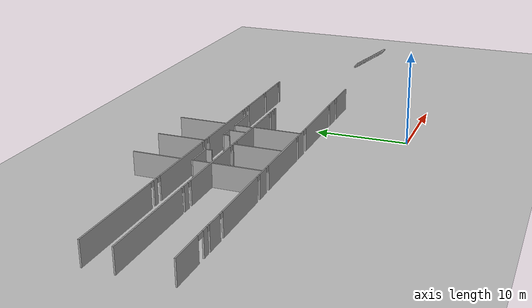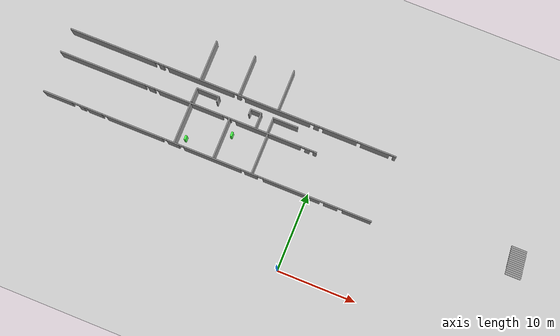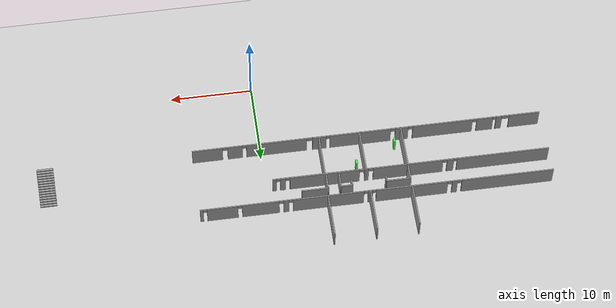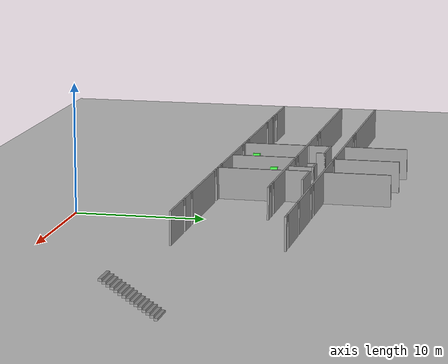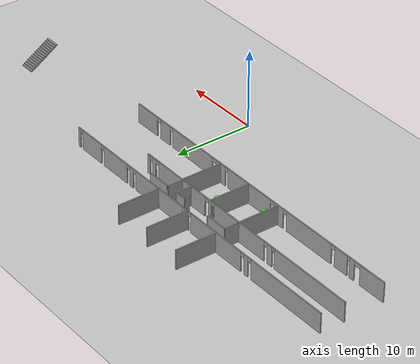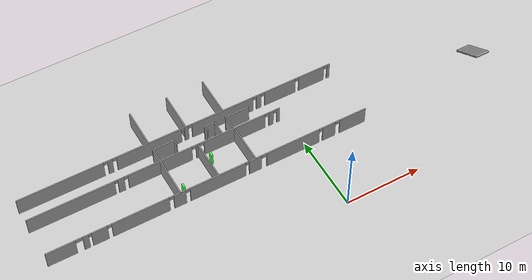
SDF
<sdf version="1.6">
 <world name="default">
  <model name="ground_plane">
   <static>1</static>
   <link name="link">
    <collision name="collision">
     <geometry><plane><normal>0 0 1</normal><size>100 100</size></plane></geometry>
     <surface><friction><ode><mu>100</mu><mu2>50</mu2></ode></friction></surface>
    </collision>
    <visual name="visual">
     <cast_shadows>0</cast_shadows>
     <geometry><plane><normal>0 0 1</normal><size>100 100</size></plane></geometry>
     <material>
      <script><uri>file://media/materials/scripts/gazebo.material</uri><name>Gazebo/Grey</name></script>
     </material>
    </visual>
   </link>
  </model>
  <model name="se1floor1">
   <pose>-5.19256 -0.852459 0 0 -0 0</pose>
   <link name="Stairs_0">
    <visual name="Stairs_0_Visual_0">
     <pose>31.172 14.058 0.083333 0 -0 0</pose>
     <geometry><box><size>1.96304 0.254734 0.166667</size></box></geometry>
     <material>
      <script><uri>file://media/materials/scripts/gazebo.material</uri><name>Gazebo/Grey</name></script>
      <ambient>1 1 1 1</ambient>
     </material>
     <meta><layer>0</layer></meta>
    </visual>
    <collision name="Stairs_0_Collision_0">
     <geometry><box><size>1.96304 0.254734 0.166667</size></box></geometry>
     <pose>31.172 14.058 0.083333 0 -0 0</pose>
    </collision>
    <visual name="Stairs_0_Visual_1">
     <pose>31.172 13.8033 0.25 0 -0 0</pose>
     <geometry><box><size>1.96304 0.254734 0.166667</size></box></geometry>
     <material>
      <script><uri>file://media/materials/scripts/gazebo.material</uri><name>Gazebo/Grey</name></script>
      <ambient>1 1 1 1</ambient>
     </material>
     <meta><layer>0</layer></meta>
    </visual>
    <collision name="Stairs_0_Collision_1">
     <geometry><box><size>1.96304 0.254734 0.166667</size></box></geometry>
     <pose>31.172 13.8033 0.25 0 -0 0</pose>
    </collision>
    <visual name="Stairs_0_Visual_2">
     <pose>31.172 13.5485 0.416667 0 -0 0</pose>
     <geometry><box><size>1.96304 0.254734 0.166667</size></box></geometry>
     <material>
      <script><uri>file://media/materials/scripts/gazebo.material</uri><name>Gazebo/Grey</name></script>
      <ambient>1 1 1 1</ambient>
     </material>
     <meta><layer>0</layer></meta>
    </visual>
    <collision name="Stairs_0_Collision_2">
     <geometry><box><size>1.96304 0.254734 0.166667</size></box></geometry>
     <pose>31.172 13.5485 0.416667 0 -0 0</pose>
    </collision>
    <visual name="Stairs_0_Visual_3">
     <pose>31.172 13.2938 0.583333 0 -0 0</pose>
     <geometry><box><size>1.96304 0.254734 0.166667</size></box></geometry>
     <material>
      <script><uri>file://media/materials/scripts/gazebo.material</uri><name>Gazebo/Grey</name></script>
      <ambient>1 1 1 1</ambient>
     </material>
     <meta><layer>0</layer></meta>
    </visual>
    <collision name="Stairs_0_Collision_3">
     <geometry><box><size>1.96304 0.254734 0.166667</size></box></geometry>
     <pose>31.172 13.2938 0.583333 0 -0 0</pose>
    </collision>
    <visual name="Stairs_0_Visual_4">
     <pose>31.172 13.0391 0.75 0 -0 0</pose>
     <geometry><box><size>1.96304 0.254734 0.166667</size></box></geometry>
     <material>
      <script><uri>file://media/materials/scripts/gazebo.material</uri><name>Gazebo/Grey</name></script>
      <ambient>1 1 1 1</ambient>
     </material>
     <meta><layer>0</layer></meta>
    </visual>
    <collision name="Stairs_0_Collision_4">
     <geometry><box><size>1.96304 0.254734 0.166667</size></box></geometry>
     <pose>31.172 13.0391 0.75 0 -0 0</pose>
    </collision>
    <visual name="Stairs_0_Visual_5">
     <pose>31.172 12.7843 0.916667 0 -0 0</pose>
     <geometry><box><size>1.96304 0.254734 0.166667</size></box></geometry>
     <material>
      <script><uri>file://media/materials/scripts/gazebo.material</uri><name>Gazebo/Grey</name></script>
      <ambient>1 1 1 1</ambient>
     </material>
     <meta><layer>0</layer></meta>
    </visual>
    <collision name="Stairs_0_Collision_5">
     <geometry><box><size>1.96304 0.254734 0.166667</size></box></geometry>
     <pose>31.172 12.7843 0.916667 0 -0 0</pose>
    </collision>
    <visual name="Stairs_0_Visual_6">
     <pose>31.172 12.5296 1.08333 0 -0 0</pose>
     <geometry><box><size>1.96304 0.254734 0.166667</size></box></geometry>
     <material>
      <script><uri>file://media/materials/scripts/gazebo.material</uri><name>Gazebo/Grey</name></script>
      <ambient>1 1 1 1</ambient>
     </material>
     <meta><layer>0</layer></meta>
    </visual>
    <collision name="Stairs_0_Collision_6">
     <geometry><box><size>1.96304 0.254734 0.166667</size></box></geometry>
     <pose>31.172 12.5296 1.08333 0 -0 0</pose>
    </collision>
    <visual name="Stairs_0_Visual_7">
     <pose>31.172 12.2749 1.25 0 -0 0</pose>
     <geometry><box><size>1.96304 0.254734 0.166667</size></box></geometry>
     <material>
      <script><uri>file://media/materials/scripts/gazebo.material</uri><name>Gazebo/Grey</name></script>
      <ambient>1 1 1 1</ambient>
     </material>
     <meta><layer>0</layer></meta>
    </visual>
    <collision name="Stairs_0_Collision_7">
     <geometry><box><size>1.96304 0.254734 0.166667</size></box></geometry>
     <pose>31.172 12.2749 1.25 0 -0 0</pose>
    </collision>
    <visual name="Stairs_0_Visual_8">
     <pose>31.172 12.0201 1.41667 0 -0 0</pose>
     <geometry><box><size>1.96304 0.254734 0.166667</size></box></geometry>
     <material>
      <script><uri>file://media/materials/scripts/gazebo.material</uri><name>Gazebo/Grey</name></script>
      <ambient>1 1 1 1</ambient>
     </material>
     <meta><layer>0</layer></meta>
    </visual>
    <collision name="Stairs_0_Collision_8">
     <geometry><box><size>1.96304 0.254734 0.166667</size></box></geometry>
     <pose>31.172 12.0201 1.41667 0 -0 0</pose>
    </collision>
    <visual name="Stairs_0_Visual_9">
     <pose>31.172 11.7654 1.58333 0 -0 0</pose>
     <geometry><box><size>1.96304 0.254734 0.166667</size></box></geometry>
     <material>
      <script><uri>file://media/materials/scripts/gazebo.material</uri><name>Gazebo/Grey</name></script>
      <ambient>1 1 1 1</ambient>
     </material>
     <meta><layer>0</layer></meta>
    </visual>
    <collision name="Stairs_0_Collision_9">
     <geometry><box><size>1.96304 0.254734 0.166667</size></box></geometry>
     <pose>31.172 11.7654 1.58333 0 -0 0</pose>
    </collision>
    <visual name="Stairs_0_Visual_10">
     <pose>31.172 11.5107 1.75 0 -0 0</pose>
     <geometry><box><size>1.96304 0.254734 0.166667</size></box></geometry>
     <material>
      <script><uri>file://media/materials/scripts/gazebo.material</uri><name>Gazebo/Grey</name></script>
      <ambient>1 1 1 1</ambient>
     </material>
     <meta><layer>0</layer></meta>
    </visual>
    <collision name="Stairs_0_Collision_10">
     <geometry><box><size>1.96304 0.254734 0.166667</size></box></geometry>
     <pose>31.172 11.5107 1.75 0 -0 0</pose>
    </collision>
    <visual name="Stairs_0_Visual_11">
     <pose>31.172 11.2559 1.91667 0 -0 0</pose>
     <geometry><box><size>1.96304 0.254734 0.166667</size></box></geometry>
     <material>
      <script><uri>file://media/materials/scripts/gazebo.material</uri><name>Gazebo/Grey</name></script>
      <ambient>1 1 1 1</ambient>
     </material>
     <meta><layer>0</layer></meta>
    </visual>
    <collision name="Stairs_0_Collision_11">
     <geometry><box><size>1.96304 0.254734 0.166667</size></box></geometry>
     <pose>31.172 11.2559 1.91667 0 -0 0</pose>
    </collision>
    <visual name="Stairs_0_Visual_12">
     <pose>31.172 11.0012 2.08333 0 -0 0</pose>
     <geometry><box><size>1.96304 0.254734 0.166667</size></box></geometry>
     <material>
      <script><uri>file://media/materials/scripts/gazebo.material</uri><name>Gazebo/Grey</name></script>
      <ambient>1 1 1 1</ambient>
     </material>
     <meta><layer>0</layer></meta>
    </visual>
    <collision name="Stairs_0_Collision_12">
     <geometry><box><size>1.96304 0.254734 0.166667</size></box></geometry>
     <pose>31.172 11.0012 2.08333 0 -0 0</pose>
    </collision>
    <visual name="Stairs_0_Visual_13">
     <pose>31.172 10.7465 2.25 0 -0 0</pose>
     <geometry><box><size>1.96304 0.254734 0.166667</size></box></geometry>
     <material>
      <script><uri>file://media/materials/scripts/gazebo.material</uri><name>Gazebo/Grey</name></script>
      <ambient>1 1 1 1</ambient>
     </material>
     <meta><layer>0</layer></meta>
    </visual>
    <collision name="Stairs_0_Collision_13">
     <geometry><box><size>1.96304 0.254734 0.166667</size></box></geometry>
     <pose>31.172 10.7465 2.25 0 -0 0</pose>
    </collision>
    <visual name="Stairs_0_Visual_14">
     <pose>31.172 10.4917 2.41667 0 -0 0</pose>
     <geometry><box><size>1.96304 0.254734 0.166667</size></box></geometry>
     <material>
      <script><uri>file://media/materials/scripts/gazebo.material</uri><name>Gazebo/Grey</name></script>
      <ambient>1 1 1 1</ambient>
     </material>
     <meta><layer>0</layer></meta>
    </visual>
    <collision name="Stairs_0_Collision_14">
     <geometry><box><size>1.96304 0.254734 0.166667</size></box></geometry>
     <pose>31.172 10.4917 2.41667 0 -0 0</pose>
    </collision>
   </link>
   <link name="Wall_20">
    <pose>-7.78282 10.2953 0 0 -0 0</pose>
    <visual name="Wall_20_Visual_0">
     <pose>-19.3949 0 1.25 0 -0 0</pose>
     <geometry><box><size>3.71017 0.15 2.5</size></box></geometry>
     <material>
      <script><uri>file://media/materials/scripts/gazebo.material</uri><name>Gazebo/Grey</name></script>
      <ambient>1 1 1 1</ambient>
     </material>
     <meta><layer>0</layer></meta>
    </visual>
    <collision name="Wall_20_Collision_0">
     <geometry><box><size>3.71017 0.15 2.5</size></box></geometry>
     <pose>-19.3949 0 1.25 0 -0 0</pose>
    </collision>
    <visual name="Wall_20_Visual_1">
     <pose>-16.2807 0 1.25 0 -0 0</pose>
     <geometry><box><size>0.718224 0.15 2.5</size></box></geometry>
     <material>
      <script><uri>file://media/materials/scripts/gazebo.material</uri><name>Gazebo/Grey</name></script>
      <ambient>1 1 1 1</ambient>
     </material>
     <meta><layer>0</layer></meta>
    </visual>
    <collision name="Wall_20_Collision_1">
     <geometry><box><size>0.718224 0.15 2.5</size></box></geometry>
     <pose>-16.2807 0 1.25 0 -0 0</pose>
    </collision>
    <visual name="Wall_20_Visual_2">
     <pose>-14.5512 0 1.25 0 -0 0</pose>
     <geometry><box><size>1.99257 0.15 2.5</size></box></geometry>
     <material>
      <script><uri>file://media/materials/scripts/gazebo.material</uri><name>Gazebo/Grey</name></script>
      <ambient>1 1 1 1</ambient>
     </material>
     <meta><layer>0</layer></meta>
    </visual>
    <collision name="Wall_20_Collision_2">
     <geometry><box><size>1.99257 0.15 2.5</size></box></geometry>
     <pose>-14.5512 0 1.25 0 -0 0</pose>
    </collision>
    <visual name="Wall_20_Visual_3">
     <pose>-9.34259 0 1.25 0 -0 0</pose>
     <geometry><box><size>7.35294 0.15 2.5</size></box></geometry>
     <material>
      <script><uri>file://media/materials/scripts/gazebo.material</uri><name>Gazebo/Grey</name></script>
      <ambient>1 1 1 1</ambient>
     </material>
     <meta><layer>0</layer></meta>
    </visual>
    <collision name="Wall_20_Collision_3">
     <geometry><box><size>7.35294 0.15 2.5</size></box></geometry>
     <pose>-9.34259 0 1.25 0 -0 0</pose>
    </collision>
    <visual name="Wall_20_Visual_4">
     <pose>-4.29765 0 1.25 0 -0 0</pose>
     <geometry><box><size>1.58424 0.15 2.5</size></box></geometry>
     <material>
      <script><uri>file://media/materials/scripts/gazebo.material</uri><name>Gazebo/Grey</name></script>
      <ambient>1 1 1 1</ambient>
     </material>
     <meta><layer>0</layer></meta>
    </visual>
    <collision name="Wall_20_Collision_4">
     <geometry><box><size>1.58424 0.15 2.5</size></box></geometry>
     <pose>-4.29765 0 1.25 0 -0 0</pose>
    </collision>
    <visual name="Wall_20_Visual_5">
     <pose>0.780372 0 1.25 0 -0 0</pose>
     <geometry><box><size>7.45233 0.15 2.5</size></box></geometry>
     <material>
      <script><uri>file://media/materials/scripts/gazebo.material</uri><name>Gazebo/Grey</name></script>
      <ambient>1 1 1 1</ambient>
     </material>
     <meta><layer>0</layer></meta>
    </visual>
    <collision name="Wall_20_Collision_5">
     <geometry><box><size>7.45233 0.15 2.5</size></box></geometry>
     <pose>0.780372 0 1.25 0 -0 0</pose>
    </collision>
    <visual name="Wall_20_Visual_6">
     <pose>5.78234 0 1.25 0 -0 0</pose>
     <geometry><box><size>1.68208 0.15 2.5</size></box></geometry>
     <material>
      <script><uri>file://media/materials/scripts/gazebo.material</uri><name>Gazebo/Grey</name></script>
      <ambient>1 1 1 1</ambient>
     </material>
     <meta><layer>0</layer></meta>
    </visual>
    <collision name="Wall_20_Collision_6">
     <geometry><box><size>1.68208 0.15 2.5</size></box></geometry>
     <pose>5.78234 0 1.25 0 -0 0</pose>
    </collision>
    <visual name="Wall_20_Visual_7">
     <pose>11.0046 0 1.25 0 -0 0</pose>
     <geometry><box><size>7.33473 0.15 2.5</size></box></geometry>
     <material>
      <script><uri>file://media/materials/scripts/gazebo.material</uri><name>Gazebo/Grey</name></script>
      <ambient>1 1 1 1</ambient>
     </material>
     <meta><layer>0</layer></meta>
    </visual>
    <collision name="Wall_20_Collision_7">
     <geometry><box><size>7.33473 0.15 2.5</size></box></geometry>
     <pose>11.0046 0 1.25 0 -0 0</pose>
    </collision>
    <visual name="Wall_20_Visual_8">
     <pose>16.0525 0 1.25 0 -0 0</pose>
     <geometry><box><size>1.79839 0.15 2.5</size></box></geometry>
     <material>
      <script><uri>file://media/materials/scripts/gazebo.material</uri><name>Gazebo/Grey</name></script>
      <ambient>1 1 1 1</ambient>
     </material>
     <meta><layer>0</layer></meta>
    </visual>
    <collision name="Wall_20_Collision_8">
     <geometry><box><size>1.79839 0.15 2.5</size></box></geometry>
     <pose>16.0525 0 1.25 0 -0 0</pose>
    </collision>
    <visual name="Wall_20_Visual_9">
     <pose>19.4113 0 1.25 0 -0 0</pose>
     <geometry><box><size>3.67746 0.15 2.5</size></box></geometry>
     <material>
      <script><uri>file://media/materials/scripts/gazebo.material</uri><name>Gazebo/Grey</name></script>
      <ambient>1 1 1 1</ambient>
     </material>
     <meta><layer>0</layer></meta>
    </visual>
    <collision name="Wall_20_Collision_9">
     <geometry><box><size>3.67746 0.15 2.5</size></box></geometry>
     <pose>19.4113 0 1.25 0 -0 0</pose>
    </collision>
    <visual name="Wall_20_Visual_10">
     <pose>-17.0898 0 2.25 0 -0 0</pose>
     <geometry><box><size>0.9 0.15 0.5</size></box></geometry>
     <material>
      <script><uri>file://media/materials/scripts/gazebo.material</uri><name>Gazebo/Grey</name></script>
      <ambient>1 1 1 1</ambient>
     </material>
     <meta><layer>0</layer></meta>
    </visual>
    <collision name="Wall_20_Collision_10">
     <geometry><box><size>0.9 0.15 0.5</size></box></geometry>
     <pose>-17.0898 0 2.25 0 -0 0</pose>
    </collision>
    <visual name="Wall_20_Visual_11">
     <pose>-15.7346 0 2.25 0 -0 0</pose>
     <geometry><box><size>0.374077 0.15 0.5</size></box></geometry>
     <material>
      <script><uri>file://media/materials/scripts/gazebo.material</uri><name>Gazebo/Grey</name></script>
      <ambient>1 1 1 1</ambient>
     </material>
     <meta><layer>0</layer></meta>
    </visual>
    <collision name="Wall_20_Collision_11">
     <geometry><box><size>0.374077 0.15 0.5</size></box></geometry>
     <pose>-15.7346 0 2.25 0 -0 0</pose>
    </collision>
    <visual name="Wall_20_Visual_12">
     <pose>-13.287 0 2.25 0 -0 0</pose>
     <geometry><box><size>0.5359 0.15 0.5</size></box></geometry>
     <material>
      <script><uri>file://media/materials/scripts/gazebo.material</uri><name>Gazebo/Grey</name></script>
      <ambient>1 1 1 1</ambient>
     </material>
     <meta><layer>0</layer></meta>
    </visual>
    <collision name="Wall_20_Collision_12">
     <geometry><box><size>0.5359 0.15 0.5</size></box></geometry>
     <pose>-13.287 0 2.25 0 -0 0</pose>
    </collision>
    <visual name="Wall_20_Visual_13">
     <pose>-5.37794 0 2.25 0 -0 0</pose>
     <geometry><box><size>0.576355 0.15 0.5</size></box></geometry>
     <material>
      <script><uri>file://media/materials/scripts/gazebo.material</uri><name>Gazebo/Grey</name></script>
      <ambient>1 1 1 1</ambient>
     </material>
     <meta><layer>0</layer></meta>
    </visual>
    <collision name="Wall_20_Collision_13">
     <geometry><box><size>0.576355 0.15 0.5</size></box></geometry>
     <pose>-5.37794 0 2.25 0 -0 0</pose>
    </collision>
    <visual name="Wall_20_Visual_14">
     <pose>-3.22566 0 2.25 0 -0 0</pose>
     <geometry><box><size>0.559735 0.15 0.5</size></box></geometry>
     <material>
      <script><uri>file://media/materials/scripts/gazebo.material</uri><name>Gazebo/Grey</name></script>
      <ambient>1 1 1 1</ambient>
     </material>
     <meta><layer>0</layer></meta>
    </visual>
    <collision name="Wall_20_Collision_14">
     <geometry><box><size>0.559735 0.15 0.5</size></box></geometry>
     <pose>-3.22566 0 2.25 0 -0 0</pose>
    </collision>
    <visual name="Wall_20_Visual_15">
     <pose>4.72392 0 2.25 0 -0 0</pose>
     <geometry><box><size>0.434761 0.15 0.5</size></box></geometry>
     <material>
      <script><uri>file://media/materials/scripts/gazebo.material</uri><name>Gazebo/Grey</name></script>
      <ambient>1 1 1 1</ambient>
     </material>
     <meta><layer>0</layer></meta>
    </visual>
    <collision name="Wall_20_Collision_15">
     <geometry><box><size>0.434761 0.15 0.5</size></box></geometry>
     <pose>4.72392 0 2.25 0 -0 0</pose>
    </collision>
    <visual name="Wall_20_Visual_16">
     <pose>6.98033 0 2.25 0 -0 0</pose>
     <geometry><box><size>0.713904 0.15 0.5</size></box></geometry>
     <material>
      <script><uri>file://media/materials/scripts/gazebo.material</uri><name>Gazebo/Grey</name></script>
      <ambient>1 1 1 1</ambient>
     </material>
     <meta><layer>0</layer></meta>
    </visual>
    <collision name="Wall_20_Collision_16">
     <geometry><box><size>0.713904 0.15 0.5</size></box></geometry>
     <pose>6.98033 0 2.25 0 -0 0</pose>
    </collision>
    <visual name="Wall_20_Visual_17">
     <pose>14.9127 0 2.25 0 -0 0</pose>
     <geometry><box><size>0.481285 0.15 0.5</size></box></geometry>
     <material>
      <script><uri>file://media/materials/scripts/gazebo.material</uri><name>Gazebo/Grey</name></script>
      <ambient>1 1 1 1</ambient>
     </material>
     <meta><layer>0</layer></meta>
    </visual>
    <collision name="Wall_20_Collision_17">
     <geometry><box><size>0.481285 0.15 0.5</size></box></geometry>
     <pose>14.9127 0 2.25 0 -0 0</pose>
    </collision>
    <visual name="Wall_20_Visual_18">
     <pose>17.2621 0 2.25 0 -0 0</pose>
     <geometry><box><size>0.620857 0.15 0.5</size></box></geometry>
     <material>
      <script><uri>file://media/materials/scripts/gazebo.material</uri><name>Gazebo/Grey</name></script>
      <ambient>1 1 1 1</ambient>
     </material>
     <meta><layer>0</layer></meta>
    </visual>
    <collision name="Wall_20_Collision_18">
     <geometry><box><size>0.620857 0.15 0.5</size></box></geometry>
     <pose>17.2621 0 2.25 0 -0 0</pose>
    </collision>
   </link>
   <link name="Wall_29">
    <pose>-12.3828 15.5453 0 0 -0 3.14159</pose>
    <visual name="Wall_29_Visual_0">
     <pose>-16.5318 0 1.25 0 -0 0</pose>
     <geometry><box><size>0.436443 0.15 2.5</size></box></geometry>
     <material>
      <script><uri>file://media/materials/scripts/gazebo.material</uri><name>Gazebo/Grey</name></script>
      <ambient>1 1 1 1</ambient>
     </material>
     <meta><layer>0</layer></meta>
    </visual>
    <collision name="Wall_29_Collision_0">
     <geometry><box><size>0.436443 0.15 2.5</size></box></geometry>
     <pose>-16.5318 0 1.25 0 -0 0</pose>
    </collision>
    <visual name="Wall_29_Visual_1">
     <pose>-15.5417 0 1.25 0 -0 0</pose>
     <geometry><box><size>0.628631 0.15 2.5</size></box></geometry>
     <material>
      <script><uri>file://media/materials/scripts/gazebo.material</uri><name>Gazebo/Grey</name></script>
      <ambient>1 1 1 1</ambient>
     </material>
     <meta><layer>0</layer></meta>
    </visual>
    <collision name="Wall_29_Collision_1">
     <geometry><box><size>0.628631 0.15 2.5</size></box></geometry>
     <pose>-15.5417 0 1.25 0 -0 0</pose>
    </collision>
    <visual name="Wall_29_Visual_2">
     <pose>-10.4781 0 1.25 0 -0 0</pose>
     <geometry><box><size>8.42264 0.15 2.5</size></box></geometry>
     <material>
      <script><uri>file://media/materials/scripts/gazebo.material</uri><name>Gazebo/Grey</name></script>
      <ambient>1 1 1 1</ambient>
     </material>
     <meta><layer>0</layer></meta>
    </visual>
    <collision name="Wall_29_Collision_2">
     <geometry><box><size>8.42264 0.15 2.5</size></box></geometry>
     <pose>-10.4781 0 1.25 0 -0 0</pose>
    </collision>
    <visual name="Wall_29_Visual_3">
     <pose>-5.40953 0 1.25 0 -0 0</pose>
     <geometry><box><size>0.477779 0.15 2.5</size></box></geometry>
     <material>
      <script><uri>file://media/materials/scripts/gazebo.material</uri><name>Gazebo/Grey</name></script>
      <ambient>1 1 1 1</ambient>
     </material>
     <meta><layer>0</layer></meta>
    </visual>
    <collision name="Wall_29_Collision_3">
     <geometry><box><size>0.477779 0.15 2.5</size></box></geometry>
     <pose>-5.40953 0 1.25 0 -0 0</pose>
    </collision>
    <visual name="Wall_29_Visual_4">
     <pose>-0.381135 0 1.25 0 -0 0</pose>
     <geometry><box><size>8.46287 0.15 2.5</size></box></geometry>
     <material>
      <script><uri>file://media/materials/scripts/gazebo.material</uri><name>Gazebo/Grey</name></script>
      <ambient>1 1 1 1</ambient>
     </material>
     <meta><layer>0</layer></meta>
    </visual>
    <collision name="Wall_29_Collision_4">
     <geometry><box><size>8.46287 0.15 2.5</size></box></geometry>
     <pose>-0.381135 0 1.25 0 -0 0</pose>
    </collision>
    <visual name="Wall_29_Visual_5">
     <pose>4.75788 0 1.25 0 -0 0</pose>
     <geometry><box><size>0.81971 0.15 2.5</size></box></geometry>
     <material>
      <script><uri>file://media/materials/scripts/gazebo.material</uri><name>Gazebo/Grey</name></script>
      <ambient>1 1 1 1</ambient>
     </material>
     <meta><layer>0</layer></meta>
    </visual>
    <collision name="Wall_29_Collision_5">
     <geometry><box><size>0.81971 0.15 2.5</size></box></geometry>
     <pose>4.75788 0 1.25 0 -0 0</pose>
    </collision>
    <visual name="Wall_29_Visual_6">
     <pose>11.1574 0 1.25 0 -0 0</pose>
     <geometry><box><size>11.1851 0.15 2.5</size></box></geometry>
     <material>
      <script><uri>file://media/materials/scripts/gazebo.material</uri><name>Gazebo/Grey</name></script>
      <ambient>1 1 1 1</ambient>
     </material>
     <meta><layer>0</layer></meta>
    </visual>
    <collision name="Wall_29_Collision_6">
     <geometry><box><size>11.1851 0.15 2.5</size></box></geometry>
     <pose>11.1574 0 1.25 0 -0 0</pose>
    </collision>
    <visual name="Wall_29_Visual_7">
     <pose>-16.0848 0 2.25 0 -0 0</pose>
     <geometry><box><size>0.457501 0.15 0.5</size></box></geometry>
     <material>
      <script><uri>file://media/materials/scripts/gazebo.material</uri><name>Gazebo/Grey</name></script>
      <ambient>1 1 1 1</ambient>
     </material>
     <meta><layer>0</layer></meta>
    </visual>
    <collision name="Wall_29_Collision_7">
     <geometry><box><size>0.457501 0.15 0.5</size></box></geometry>
     <pose>-16.0848 0 2.25 0 -0 0</pose>
    </collision>
    <visual name="Wall_29_Visual_8">
     <pose>-14.9584 0 2.25 0 -0 0</pose>
     <geometry><box><size>0.537956 0.15 0.5</size></box></geometry>
     <material>
      <script><uri>file://media/materials/scripts/gazebo.material</uri><name>Gazebo/Grey</name></script>
      <ambient>1 1 1 1</ambient>
     </material>
     <meta><layer>0</layer></meta>
    </visual>
    <collision name="Wall_29_Collision_8">
     <geometry><box><size>0.537956 0.15 0.5</size></box></geometry>
     <pose>-14.9584 0 2.25 0 -0 0</pose>
    </collision>
    <visual name="Wall_29_Visual_9">
     <pose>-5.95762 0 2.25 0 -0 0</pose>
     <geometry><box><size>0.61841 0.15 0.5</size></box></geometry>
     <material>
      <script><uri>file://media/materials/scripts/gazebo.material</uri><name>Gazebo/Grey</name></script>
      <ambient>1 1 1 1</ambient>
     </material>
     <meta><layer>0</layer></meta>
    </visual>
    <collision name="Wall_29_Collision_9">
     <geometry><box><size>0.61841 0.15 0.5</size></box></geometry>
     <pose>-5.95762 0 2.25 0 -0 0</pose>
    </collision>
    <visual name="Wall_29_Visual_10">
     <pose>-4.8916 0 2.25 0 -0 0</pose>
     <geometry><box><size>0.558069 0.15 0.5</size></box></geometry>
     <material>
      <script><uri>file://media/materials/scripts/gazebo.material</uri><name>Gazebo/Grey</name></script>
      <ambient>1 1 1 1</ambient>
     </material>
     <meta><layer>0</layer></meta>
    </visual>
    <collision name="Wall_29_Collision_10">
     <geometry><box><size>0.558069 0.15 0.5</size></box></geometry>
     <pose>-4.8916 0 2.25 0 -0 0</pose>
    </collision>
    <visual name="Wall_29_Visual_11">
     <pose>4.09916 0 2.25 0 -0 0</pose>
     <geometry><box><size>0.497729 0.15 0.5</size></box></geometry>
     <material>
      <script><uri>file://media/materials/scripts/gazebo.material</uri><name>Gazebo/Grey</name></script>
      <ambient>1 1 1 1</ambient>
     </material>
     <meta><layer>0</layer></meta>
    </visual>
    <collision name="Wall_29_Collision_11">
     <geometry><box><size>0.497729 0.15 0.5</size></box></geometry>
     <pose>4.09916 0 2.25 0 -0 0</pose>
    </collision>
    <visual name="Wall_29_Visual_12">
     <pose>5.36632 0 2.25 0 -0 0</pose>
     <geometry><box><size>0.397161 0.15 0.5</size></box></geometry>
     <material>
      <script><uri>file://media/materials/scripts/gazebo.material</uri><name>Gazebo/Grey</name></script>
      <ambient>1 1 1 1</ambient>
     </material>
     <meta><layer>0</layer></meta>
    </visual>
    <collision name="Wall_29_Collision_12">
     <geometry><box><size>0.397161 0.15 0.5</size></box></geometry>
     <pose>5.36632 0 2.25 0 -0 0</pose>
    </collision>
   </link>
   <link name="Wall_32">
    <collision name="Wall_32_Collision">
     <geometry><box><size>3.25 0.15 2.5</size></box></geometry>
     <pose>0 0 1.25 0 -0 0</pose>
    </collision>
    <visual name="Wall_32_Visual">
     <pose>0 0 1.25 0 -0 0</pose>
     <geometry><box><size>3.25 0.15 2.5</size></box></geometry>
     <material>
      <script><uri>file://media/materials/scripts/gazebo.material</uri><name>Gazebo/Grey</name></script>
      <ambient>1 1 1 1</ambient>
     </material>
     <meta><layer>0</layer></meta>
    </visual>
    <pose>-0.492923 17.5575 0 0 -0 3.14159</pose>
   </link>
   <link name="Wall_33">
    <collision name="Wall_33_Collision">
     <geometry><box><size>2 0.15 2.5</size></box></geometry>
     <pose>0 0 1.25 0 -0 0</pose>
    </collision>
    <visual name="Wall_33_Visual">
     <pose>0 0 1.25 0 -0 0</pose>
     <geometry><box><size>2 0.15 2.5</size></box></geometry>
     <material>
      <script><uri>file://media/materials/scripts/gazebo.material</uri><name>Gazebo/Grey</name></script>
      <ambient>1 1 1 1</ambient>
     </material>
     <meta><layer>0</layer></meta>
    </visual>
    <pose>-2.04292 16.6325 0 0 0 -1.5708</pose>
   </link>
   <link name="Wall_35">
    <collision name="Wall_35_Collision">
     <geometry><box><size>2 0.15 2.5</size></box></geometry>
     <pose>0 0 1.25 0 -0 0</pose>
    </collision>
    <visual name="Wall_35_Visual">
     <pose>0 0 1.25 0 -0 0</pose>
     <geometry><box><size>2 0.15 2.5</size></box></geometry>
     <material>
      <script><uri>file://media/materials/scripts/gazebo.material</uri><name>Gazebo/Grey</name></script>
      <ambient>1 1 1 1</ambient>
     </material>
     <meta><layer>0</layer></meta>
    </visual>
    <pose>-3.59764 16.5984 0 0 -0 1.5708</pose>
   </link>
   <link name="Wall_36">
    <collision name="Wall_36_Collision">
     <geometry><box><size>1.5 0.15 2.5</size></box></geometry>
     <pose>0 0 1.25 0 -0 0</pose>
    </collision>
    <visual name="Wall_36_Visual">
     <pose>0 0 1.25 0 -0 0</pose>
     <geometry><box><size>1.5 0.15 2.5</size></box></geometry>
     <material>
      <script><uri>file://media/materials/scripts/gazebo.material</uri><name>Gazebo/Grey</name></script>
      <ambient>1 1 1 1</ambient>
     </material>
     <meta><layer>0</layer></meta>
    </visual>
    <pose>-4.27264 17.5234 0 0 -0 3.14159</pose>
   </link>
   <link name="Wall_37">
    <collision name="Wall_37_Collision">
     <geometry><box><size>0.75 0.15 2.5</size></box></geometry>
     <pose>0 0 1.25 0 -0 0</pose>
    </collision>
    <visual name="Wall_37_Visual">
     <pose>0 0 1.25 0 -0 0</pose>
     <geometry><box><size>0.75 0.15 2.5</size></box></geometry>
     <material>
      <script><uri>file://media/materials/scripts/gazebo.material</uri><name>Gazebo/Grey</name></script>
      <ambient>1 1 1 1</ambient>
     </material>
     <meta><layer>0</layer></meta>
    </visual>
    <pose>-4.94764 17.2234 0 0 0 -1.5708</pose>
   </link>
   <link name="Wall_39">
    <collision name="Wall_39_Collision">
     <geometry><box><size>0.75 0.15 2.5</size></box></geometry>
     <pose>0 0 1.25 0 -0 0</pose>
    </collision>
    <visual name="Wall_39_Visual">
     <pose>0 0 1.25 0 -0 0</pose>
     <geometry><box><size>0.75 0.15 2.5</size></box></geometry>
     <material>
      <script><uri>file://media/materials/scripts/gazebo.material</uri><name>Gazebo/Grey</name></script>
      <ambient>1 1 1 1</ambient>
     </material>
     <meta><layer>0</layer></meta>
    </visual>
    <pose>-9.1084 17.204 0 0 -0 1.5708</pose>
   </link>
   <link name="Wall_40">
    <collision name="Wall_40_Collision">
     <geometry><box><size>3 0.15 2.5</size></box></geometry>
     <pose>0 0 1.25 0 -0 0</pose>
    </collision>
    <visual name="Wall_40_Visual">
     <pose>0 0 1.25 0 -0 0</pose>
     <geometry><box><size>3 0.15 2.5</size></box></geometry>
     <material>
      <script><uri>file://media/materials/scripts/gazebo.material</uri><name>Gazebo/Grey</name></script>
      <ambient>1 1 1 1</ambient>
     </material>
     <meta><layer>0</layer></meta>
    </visual>
    <pose>-10.5334 17.504 0 0 -0 3.14159</pose>
   </link>
   <link name="Wall_41">
    <collision name="Wall_41_Collision">
     <geometry><box><size>2 0.15 2.5</size></box></geometry>
     <pose>0 0 1.25 0 -0 0</pose>
    </collision>
    <visual name="Wall_41_Visual">
     <pose>0 0 1.25 0 -0 0</pose>
     <geometry><box><size>2 0.15 2.5</size></box></geometry>
     <material>
      <script><uri>file://media/materials/scripts/gazebo.material</uri><name>Gazebo/Grey</name></script>
      <ambient>1 1 1 1</ambient>
     </material>
     <meta><layer>0</layer></meta>
    </visual>
    <pose>-11.9584 16.579 0 0 0 -1.5708</pose>
   </link>
   <link name="Wall_47">
    <collision name="Wall_47_Collision">
     <geometry><box><size>5.25 0.15 2.5</size></box></geometry>
     <pose>0 0 1.25 0 -0 0</pose>
    </collision>
    <visual name="Wall_47_Visual">
     <pose>0 0 1.25 0 -0 0</pose>
     <geometry><box><size>5.25 0.15 2.5</size></box></geometry>
     <material>
      <script><uri>file://media/materials/scripts/gazebo.material</uri><name>Gazebo/Grey</name></script>
      <ambient>1 1 1 1</ambient>
     </material>
     <meta><layer>0</layer></meta>
    </visual>
    <pose>-1.93906 12.8559 0 0 0 -1.5708</pose>
   </link>
   <link name="Wall_49">
    <collision name="Wall_49_Collision">
     <geometry><box><size>5.25 0.15 2.5</size></box></geometry>
     <pose>0 0 1.25 0 -0 0</pose>
    </collision>
    <visual name="Wall_49_Visual">
     <pose>0 0 1.25 0 -0 0</pose>
     <geometry><box><size>5.25 0.15 2.5</size></box></geometry>
     <material>
      <script><uri>file://media/materials/scripts/gazebo.material</uri><name>Gazebo/Grey</name></script>
      <ambient>1 1 1 1</ambient>
     </material>
     <meta><layer>0</layer></meta>
    </visual>
    <pose>-6.91479 12.9094 0 0 0 -1.5708</pose>
   </link>
   <link name="Wall_52">
    <collision name="Wall_52_Collision">
     <geometry><box><size>5.5 0.15 2.5</size></box></geometry>
     <pose>0 0 1.25 0 -0 0</pose>
    </collision>
    <visual name="Wall_52_Visual">
     <pose>0 0 1.25 0 -0 0</pose>
     <geometry><box><size>5.5 0.15 2.5</size></box></geometry>
     <material>
      <script><uri>file://media/materials/scripts/gazebo.material</uri><name>Gazebo/Grey</name></script>
      <ambient>1 1 1 1</ambient>
     </material>
     <meta><layer>0</layer></meta>
    </visual>
    <pose>-11.9584 12.979 0 0 0 -1.5708</pose>
   </link>
   <link name="Wall_78">
    <pose>-7.83633 18.6161 0 0 -0 0</pose>
    <visual name="Wall_78_Visual_0">
     <pose>-15.6857 0 1.25 0 -0 0</pose>
     <geometry><box><size>11.1285 0.15 2.5</size></box></geometry>
     <material>
      <script><uri>file://media/materials/scripts/gazebo.material</uri><name>Gazebo/Grey</name></script>
      <ambient>1 1 1 1</ambient>
     </material>
     <meta><layer>0</layer></meta>
    </visual>
    <collision name="Wall_78_Collision_0">
     <geometry><box><size>11.1285 0.15 2.5</size></box></geometry>
     <pose>-15.6857 0 1.25 0 -0 0</pose>
    </collision>
    <visual name="Wall_78_Visual_1">
     <pose>-9.28426 0 1.25 0 -0 0</pose>
     <geometry><box><size>0.638689 0.15 2.5</size></box></geometry>
     <material>
      <script><uri>file://media/materials/scripts/gazebo.material</uri><name>Gazebo/Grey</name></script>
      <ambient>1 1 1 1</ambient>
     </material>
     <meta><layer>0</layer></meta>
    </visual>
    <collision name="Wall_78_Collision_1">
     <geometry><box><size>0.638689 0.15 2.5</size></box></geometry>
     <pose>-9.28426 0 1.25 0 -0 0</pose>
    </collision>
    <visual name="Wall_78_Visual_2">
     <pose>-4.11508 0 1.25 0 -0 0</pose>
     <geometry><box><size>8.62378 0.15 2.5</size></box></geometry>
     <material>
      <script><uri>file://media/materials/scripts/gazebo.material</uri><name>Gazebo/Grey</name></script>
      <ambient>1 1 1 1</ambient>
     </material>
     <meta><layer>0</layer></meta>
    </visual>
    <collision name="Wall_78_Collision_2">
     <geometry><box><size>8.62378 0.15 2.5</size></box></geometry>
     <pose>-4.11508 0 1.25 0 -0 0</pose>
    </collision>
    <visual name="Wall_78_Visual_3">
     <pose>0.903259 0 1.25 0 -0 0</pose>
     <geometry><box><size>0.538121 0.15 2.5</size></box></geometry>
     <material>
      <script><uri>file://media/materials/scripts/gazebo.material</uri><name>Gazebo/Grey</name></script>
      <ambient>1 1 1 1</ambient>
     </material>
     <meta><layer>0</layer></meta>
    </visual>
    <collision name="Wall_78_Collision_3">
     <geometry><box><size>0.538121 0.15 2.5</size></box></geometry>
     <pose>0.903259 0 1.25 0 -0 0</pose>
    </collision>
    <visual name="Wall_78_Visual_4">
     <pose>5.91657 0 1.25 0 -0 0</pose>
     <geometry><box><size>8.49304 0.15 2.5</size></box></geometry>
     <material>
      <script><uri>file://media/materials/scripts/gazebo.material</uri><name>Gazebo/Grey</name></script>
      <ambient>1 1 1 1</ambient>
     </material>
     <meta><layer>0</layer></meta>
    </visual>
    <collision name="Wall_78_Collision_4">
     <geometry><box><size>8.49304 0.15 2.5</size></box></geometry>
     <pose>5.91657 0 1.25 0 -0 0</pose>
    </collision>
    <visual name="Wall_78_Visual_5">
     <pose>10.9701 0 1.25 0 -0 0</pose>
     <geometry><box><size>0.658802 0.15 2.5</size></box></geometry>
     <material>
      <script><uri>file://media/materials/scripts/gazebo.material</uri><name>Gazebo/Grey</name></script>
      <ambient>1 1 1 1</ambient>
     </material>
     <meta><layer>0</layer></meta>
    </visual>
    <collision name="Wall_78_Collision_5">
     <geometry><box><size>0.658802 0.15 2.5</size></box></geometry>
     <pose>10.9701 0 1.25 0 -0 0</pose>
    </collision>
    <visual name="Wall_78_Visual_6">
     <pose>14.0274 0 1.25 0 -0 0</pose>
     <geometry><box><size>4.42004 0.15 2.5</size></box></geometry>
     <material>
      <script><uri>file://media/materials/scripts/gazebo.material</uri><name>Gazebo/Grey</name></script>
      <ambient>1 1 1 1</ambient>
     </material>
     <meta><layer>0</layer></meta>
    </visual>
    <collision name="Wall_78_Collision_6">
     <geometry><box><size>4.42004 0.15 2.5</size></box></geometry>
     <pose>14.0274 0 1.25 0 -0 0</pose>
    </collision>
    <visual name="Wall_78_Visual_7">
     <pose>18.573 0 1.25 0 -0 0</pose>
     <geometry><box><size>3.67584 0.15 2.5</size></box></geometry>
     <material>
      <script><uri>file://media/materials/scripts/gazebo.material</uri><name>Gazebo/Grey</name></script>
      <ambient>1 1 1 1</ambient>
     </material>
     <meta><layer>0</layer></meta>
    </visual>
    <collision name="Wall_78_Collision_7">
     <geometry><box><size>3.67584 0.15 2.5</size></box></geometry>
     <pose>18.573 0 1.25 0 -0 0</pose>
    </collision>
    <visual name="Wall_78_Visual_8">
     <pose>21.0592 0 1.25 0 -0 0</pose>
     <geometry><box><size>0.381548 0.15 2.5</size></box></geometry>
     <material>
      <script><uri>file://media/materials/scripts/gazebo.material</uri><name>Gazebo/Grey</name></script>
      <ambient>1 1 1 1</ambient>
     </material>
     <meta><layer>0</layer></meta>
    </visual>
    <collision name="Wall_78_Collision_8">
     <geometry><box><size>0.381548 0.15 2.5</size></box></geometry>
     <pose>21.0592 0 1.25 0 -0 0</pose>
    </collision>
    <visual name="Wall_78_Visual_9">
     <pose>-9.86253 0 2.25 0 -0 0</pose>
     <geometry><box><size>0.517842 0.15 0.5</size></box></geometry>
     <material>
      <script><uri>file://media/materials/scripts/gazebo.material</uri><name>Gazebo/Grey</name></script>
      <ambient>1 1 1 1</ambient>
     </material>
     <meta><layer>0</layer></meta>
    </visual>
    <collision name="Wall_78_Collision_9">
     <geometry><box><size>0.517842 0.15 0.5</size></box></geometry>
     <pose>-9.86253 0 2.25 0 -0 0</pose>
    </collision>
    <visual name="Wall_78_Visual_10">
     <pose>-8.69594 0 2.25 0 -0 0</pose>
     <geometry><box><size>0.537956 0.15 0.5</size></box></geometry>
     <material>
      <script><uri>file://media/materials/scripts/gazebo.material</uri><name>Gazebo/Grey</name></script>
      <ambient>1 1 1 1</ambient>
     </material>
     <meta><layer>0</layer></meta>
    </visual>
    <collision name="Wall_78_Collision_10">
     <geometry><box><size>0.537956 0.15 0.5</size></box></geometry>
     <pose>-8.69594 0 2.25 0 -0 0</pose>
    </collision>
    <visual name="Wall_78_Visual_11">
     <pose>0.415504 0 2.25 0 -0 0</pose>
     <geometry><box><size>0.437388 0.15 0.5</size></box></geometry>
     <material>
      <script><uri>file://media/materials/scripts/gazebo.material</uri><name>Gazebo/Grey</name></script>
      <ambient>1 1 1 1</ambient>
     </material>
     <meta><layer>0</layer></meta>
    </visual>
    <collision name="Wall_78_Collision_11">
     <geometry><box><size>0.437388 0.15 0.5</size></box></geometry>
     <pose>0.415504 0 2.25 0 -0 0</pose>
    </collision>
    <visual name="Wall_78_Visual_12">
     <pose>1.42118 0 2.25 0 -0 0</pose>
     <geometry><box><size>0.497729 0.15 0.5</size></box></geometry>
     <material>
      <script><uri>file://media/materials/scripts/gazebo.material</uri><name>Gazebo/Grey</name></script>
      <ambient>1 1 1 1</ambient>
     </material>
     <meta><layer>0</layer></meta>
    </visual>
    <collision name="Wall_78_Collision_12">
     <geometry><box><size>0.497729 0.15 0.5</size></box></geometry>
     <pose>1.42118 0 2.25 0 -0 0</pose>
    </collision>
    <visual name="Wall_78_Visual_13">
     <pose>10.4019 0 2.25 0 -0 0</pose>
     <geometry><box><size>0.477615 0.15 0.5</size></box></geometry>
     <material>
      <script><uri>file://media/materials/scripts/gazebo.material</uri><name>Gazebo/Grey</name></script>
      <ambient>1 1 1 1</ambient>
     </material>
     <meta><layer>0</layer></meta>
    </visual>
    <collision name="Wall_78_Collision_13">
     <geometry><box><size>0.477615 0.15 0.5</size></box></geometry>
     <pose>10.4019 0 2.25 0 -0 0</pose>
    </collision>
    <visual name="Wall_78_Visual_14">
     <pose>11.5584 0 2.25 0 -0 0</pose>
     <geometry><box><size>0.517842 0.15 0.5</size></box></geometry>
     <material>
      <script><uri>file://media/materials/scripts/gazebo.material</uri><name>Gazebo/Grey</name></script>
      <ambient>1 1 1 1</ambient>
     </material>
     <meta><layer>0</layer></meta>
    </visual>
    <collision name="Wall_78_Collision_14">
     <geometry><box><size>0.517842 0.15 0.5</size></box></geometry>
     <pose>11.5584 0 2.25 0 -0 0</pose>
    </collision>
    <visual name="Wall_78_Visual_15">
     <pose>16.4862 0 2.25 0 -0 0</pose>
     <geometry><box><size>0.497729 0.15 0.5</size></box></geometry>
     <material>
      <script><uri>file://media/materials/scripts/gazebo.material</uri><name>Gazebo/Grey</name></script>
      <ambient>1 1 1 1</ambient>
     </material>
     <meta><layer>0</layer></meta>
    </visual>
    <collision name="Wall_78_Collision_15">
     <geometry><box><size>0.497729 0.15 0.5</size></box></geometry>
     <pose>16.4862 0 2.25 0 -0 0</pose>
    </collision>
    <visual name="Wall_78_Visual_16">
     <pose>20.6397 0 2.25 0 -0 0</pose>
     <geometry><box><size>0.457501 0.15 0.5</size></box></geometry>
     <material>
      <script><uri>file://media/materials/scripts/gazebo.material</uri><name>Gazebo/Grey</name></script>
      <ambient>1 1 1 1</ambient>
     </material>
     <meta><layer>0</layer></meta>
    </visual>
    <collision name="Wall_78_Collision_16">
     <geometry><box><size>0.457501 0.15 0.5</size></box></geometry>
     <pose>20.6397 0 2.25 0 -0 0</pose>
    </collision>
   </link>
   <link name="Wall_86">
    <collision name="Wall_86_Collision">
     <geometry><box><size>5.25 0.15 2.5</size></box></geometry>
     <pose>0 0 1.25 0 -0 0</pose>
    </collision>
    <visual name="Wall_86_Visual">
     <pose>0 0 1.25 0 -0 0</pose>
     <geometry><box><size>5.25 0.15 2.5</size></box></geometry>
     <material>
      <script><uri>file://media/materials/scripts/gazebo.material</uri><name>Gazebo/Grey</name></script>
      <ambient>1 1 1 1</ambient>
     </material>
     <meta><layer>0</layer></meta>
    </visual>
    <pose>-11.9975 21.2023 0 0 0 -1.5708</pose>
   </link>
   <link name="Wall_88">
    <collision name="Wall_88_Collision">
     <geometry><box><size>5.25 0.15 2.5</size></box></geometry>
     <pose>0 0 1.25 0 -0 0</pose>
    </collision>
    <visual name="Wall_88_Visual">
     <pose>0 0 1.25 0 -0 0</pose>
     <geometry><box><size>5.25 0.15 2.5</size></box></geometry>
     <material>
      <script><uri>file://media/materials/scripts/gazebo.material</uri><name>Gazebo/Grey</name></script>
      <ambient>1 1 1 1</ambient>
     </material>
     <meta><layer>0</layer></meta>
    </visual>
    <pose>-6.9683 21.2558 0 0 0 -1.5708</pose>
   </link>
   <link name="Wall_90">
    <collision name="Wall_90_Collision">
     <geometry><box><size>5.25 0.15 2.5</size></box></geometry>
     <pose>0 0 1.25 0 -0 0</pose>
    </collision>
    <visual name="Wall_90_Visual">
     <pose>0 0 1.25 0 -0 0</pose>
     <geometry><box><size>5.25 0.15 2.5</size></box></geometry>
     <material>
      <script><uri>file://media/materials/scripts/gazebo.material</uri><name>Gazebo/Grey</name></script>
      <ambient>1 1 1 1</ambient>
     </material>
     <meta><layer>0</layer></meta>
    </visual>
    <pose>-1.88556 21.3093 0 0 0 -1.5708</pose>
   </link>
   <static>1</static>
  </model>
  <model name="classroom1">
   <link name="link">
    <inertial>
     <mass>1</mass>
     <inertia>
      <ixx>0.166667</ixx>
      <ixy>0</ixy>
      <ixz>0</ixz>
      <iyy>0.166667</iyy>
      <iyz>0</iyz>
      <izz>0.166667</izz>
     </inertia>
    </inertial>
    <visual name="visual">
     <geometry><box><size>0.228088 0.575919 1.77726</size></box></geometry>
     <material>
      <script><name>Gazebo/Grey</name><uri>file://media/materials/scripts/gazebo.material</uri></script>
      <ambient>0.3 1 0.3 1</ambient>
      <diffuse>0.7 0.7 0.7 1</diffuse>
      <specular>0.01 0.01 0.01 1</specular>
      <emissive>0 0 0 1</emissive>
      <shader type="vertex"><normal_map>__default__</normal_map></shader>
     </material>
    </visual>
    <collision name="collision">
     <geometry><box><size>0.228088 0.575919 1.77726</size></box></geometry>
     <surface>
      <friction>
       <ode><mu>1</mu><mu2>1</mu2><fdir1>0 0 0</fdir1><slip1>0</slip1><slip2>0</slip2></ode>
       <torsional>
        <coefficient>1</coefficient>
        <patch_radius>0</patch_radius>
        <surface_radius>0</surface_radius>
        <use_patch_radius>1</use_patch_radius>
        <ode><slip>0</slip></ode>
       </torsional>
      </friction>
      <bounce><restitution_coefficient>0</restitution_coefficient><threshold>1e+06</threshold></bounce>
      <contact>
       <collide_without_contact>0</collide_without_contact>
       <collide_without_contact_bitmask>1</collide_without_contact_bitmask>
       <collide_bitmask>1</collide_bitmask>
       <ode>
        <soft_cfm>0</soft_cfm>
        <soft_erp>0.2</soft_erp>
        <kp>1e+13</kp>
        <kd>1</kd>
        <max_vel>0.01</max_vel>
        <min_depth>0</min_depth>
       </ode>
       <bullet>
        <split_impulse>1</split_impulse>
        <split_impulse_penetration_threshold>-0.01</split_impulse_penetration_threshold>
        <soft_cfm>0</soft_cfm>
        <soft_erp>0.2</soft_erp>
        <kp>1e+13</kp>
        <kd>1</kd>
       </bullet>
      </contact>
     </surface>
    </collision>
   </link>
   <static>1</static>
   <pose>-11.1977 13.0996 0.958681 0 0 -3.12637</pose>
  </model>
  <model name="mechanicalLabDoor1">
   <link name="link">
    <inertial>
     <mass>1</mass>
     <inertia>
      <ixx>0.166667</ixx>
      <ixy>0</ixy>
      <ixz>0</ixz>
      <iyy>0.166667</iyy>
      <iyz>0</iyz>
      <izz>0.166667</izz>
     </inertia>
    </inertial>
    <visual name="visual">
     <geometry><box><size>0.228088 0.575919 1.77726</size></box></geometry>
     <material>
      <script><name>Gazebo/Grey</name><uri>file://media/materials/scripts/gazebo.material</uri></script>
      <ambient>0.3 1 0.3 1</ambient>
      <diffuse>0.7 0.7 0.7 1</diffuse>
      <specular>0.01 0.01 0.01 1</specular>
      <emissive>0 0 0 1</emissive>
      <shader type="vertex"><normal_map>__default__</normal_map></shader>
     </material>
    </visual>
    <collision name="collision">
     <geometry><box><size>0.228088 0.575919 1.77726</size></box></geometry>
     <surface>
      <friction>
       <ode><mu>1</mu><mu2>1</mu2><fdir1>0 0 0</fdir1><slip1>0</slip1><slip2>0</slip2></ode>
       <torsional>
        <coefficient>1</coefficient>
        <patch_radius>0</patch_radius>
        <surface_radius>0</surface_radius>
        <use_patch_radius>1</use_patch_radius>
        <ode><slip>0</slip></ode>
       </torsional>
      </friction>
      <bounce><restitution_coefficient>0</restitution_coefficient><threshold>1e+06</threshold></bounce>
      <contact>
       <collide_without_contact>0</collide_without_contact>
       <collide_without_contact_bitmask>1</collide_without_contact_bitmask>
       <collide_bitmask>1</collide_bitmask>
       <ode>
        <soft_cfm>0</soft_cfm>
        <soft_erp>0.2</soft_erp>
        <kp>1e+13</kp>
        <kd>1</kd>
        <max_vel>0.01</max_vel>
        <min_depth>0</min_depth>
       </ode>
       <bullet>
        <split_impulse>1</split_impulse>
        <split_impulse_penetration_threshold>-0.01</split_impulse_penetration_threshold>
        <soft_cfm>0</soft_cfm>
        <soft_erp>0.2</soft_erp>
        <kp>1e+13</kp>
        <kd>1</kd>
       </bullet>
      </contact>
     </surface>
    </collision>
   </link>
   <static>1</static>
   <pose>-16.2025 10.6445 0.958681 0 0 -3.12637</pose>
  </model>
 </world>
</sdf>
